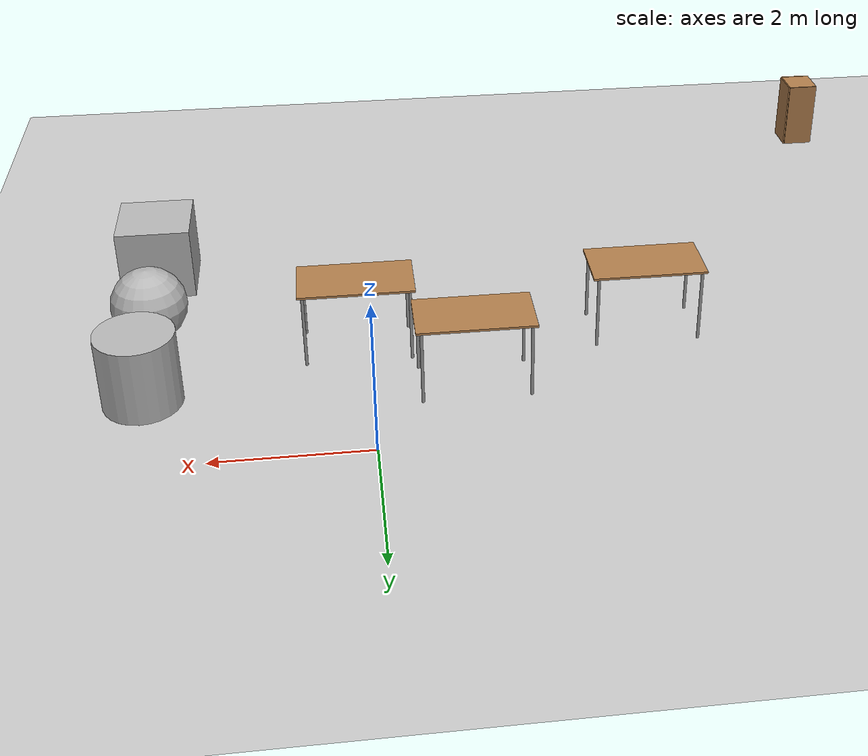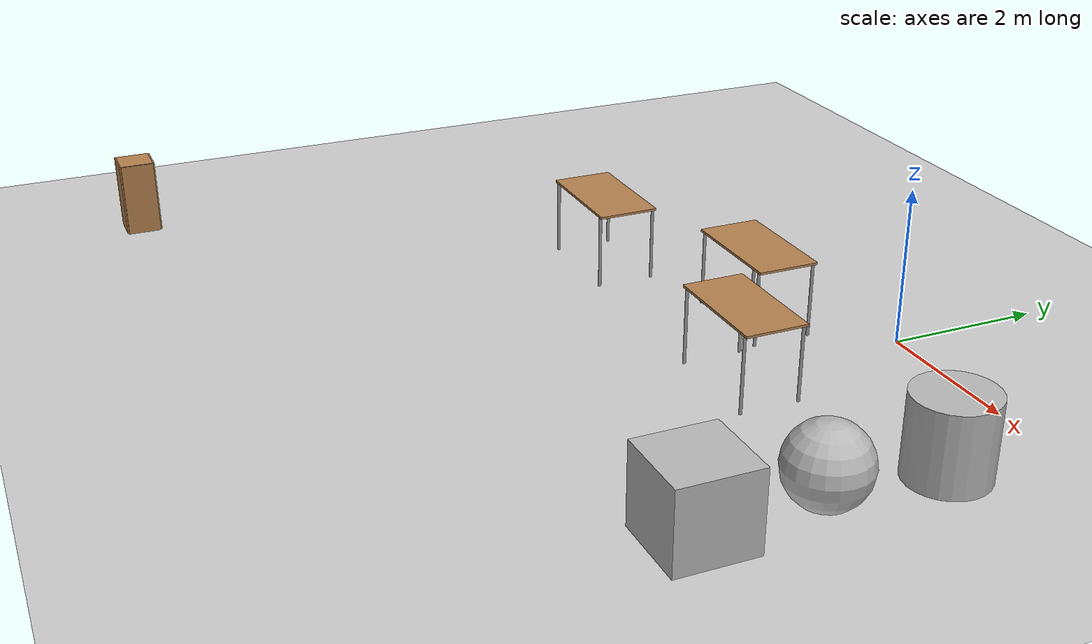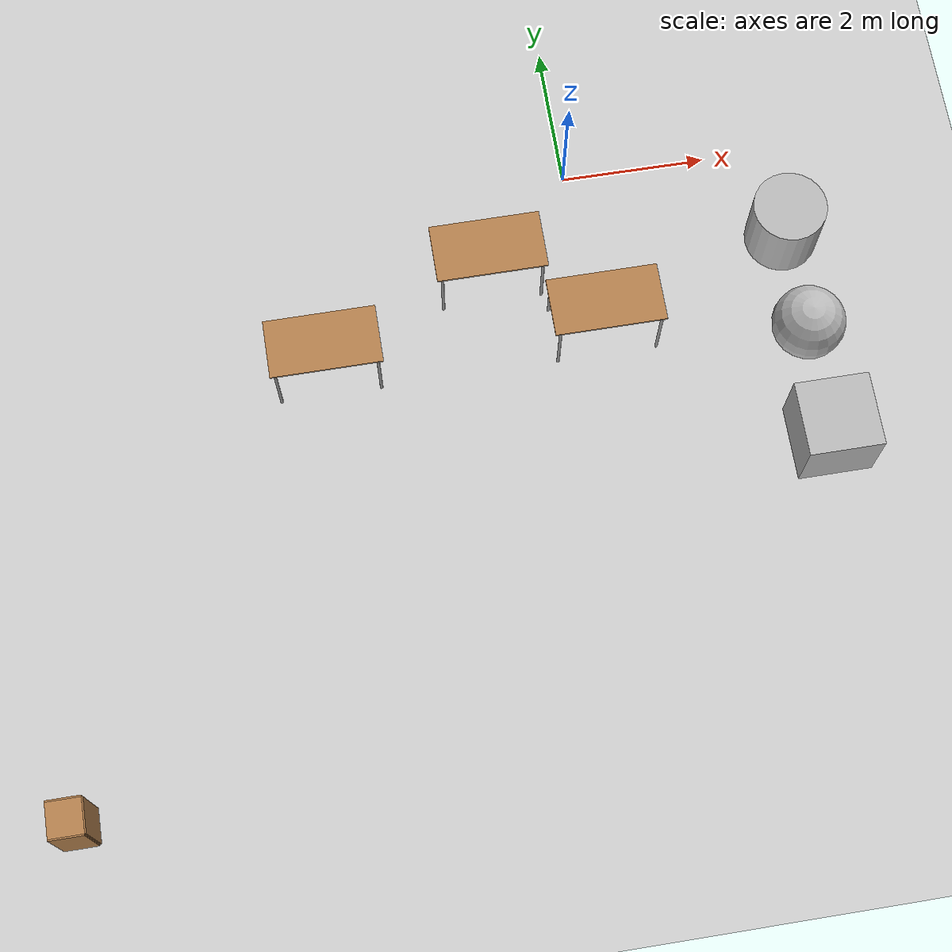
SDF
<sdf version="1.6">
 <world name="default">
  <model name="ground_plane">
   <static>1</static>
   <link name="link">
    <collision name="collision">
     <geometry><plane><normal>0 0 1</normal><size>100 100</size></plane></geometry>
     <surface>
      <contact><collide_bitmask>65535</collide_bitmask></contact>
      <friction><ode><mu>100</mu><mu2>50</mu2></ode></friction>
     </surface>
    </collision>
    <visual name="visual">
     <cast_shadows>0</cast_shadows>
     <geometry><plane><normal>0 0 1</normal><size>100 100</size></plane></geometry>
     <material>
      <script><uri>file://media/materials/scripts/gazebo.material</uri><name>Gazebo/Grey</name></script>
     </material>
    </visual>
   </link>
  </model>
  <model name="textured_shapes">
   <pose>2.8341 -2.85463 0.5 0 0 -2e-06</pose>
   <link name="box">
    <pose>0 -1.5 0 0 -0 0</pose>
    <collision name="collision"><geometry><box><size>1 1 1</size></box></geometry></collision>
    <visual name="visual">
     <geometry><box><size>1 1 1</size></box></geometry>
     <material>
      <script>
       <uri>model://textured_shapes/materials/scripts</uri>
       <uri>model://textured_shapes/materials/textures</uri>
       <name>TexturedShape/Squares</name>
      </script>
     </material>
    </visual>
    <inertial>
     <inertia><ixx>1</ixx><ixy>0</ixy><ixz>0</ixz><iyy>1</iyy><iyz>0</iyz><izz>1</izz></inertia>
     <mass>1</mass>
    </inertial>
   </link>
   <link name="sphere">
    <collision name="collision"><geometry><sphere><radius>0.5</radius></sphere></geometry></collision>
    <visual name="visual">
     <geometry><sphere><radius>0.5</radius></sphere></geometry>
     <material>
      <script>
       <uri>model://textured_shapes/materials/scripts</uri>
       <uri>model://textured_shapes/materials/textures</uri>
       <name>TexturedShape/Squares</name>
      </script>
     </material>
    </visual>
    <inertial>
     <inertia><ixx>1</ixx><ixy>0</ixy><ixz>0</ixz><iyy>1</iyy><iyz>0</iyz><izz>1</izz></inertia>
     <mass>1</mass>
    </inertial>
   </link>
   <link name="cylinder">
    <pose>0 1.5 0 0 -0 0</pose>
    <collision name="collision">
     <geometry><cylinder><radius>0.5</radius><length>1</length></cylinder></geometry>
    </collision>
    <visual name="visual">
     <geometry><cylinder><radius>0.5</radius><length>1</length></cylinder></geometry>
     <material>
      <script>
       <uri>model://textured_shapes/materials/scripts</uri>
       <uri>model://textured_shapes/materials/textures</uri>
       <name>TexturedShape/Squares</name>
      </script>
     </material>
    </visual>
    <inertial>
     <inertia><ixx>1</ixx><ixy>0</ixy><ixz>0</ixz><iyy>1</iyy><iyz>0</iyz><izz>1</izz></inertia>
     <mass>1</mass>
    </inertial>
   </link>
  </model>
  <model name="table_3">
   <static>1</static>
   <link name="link">
    <collision name="surface">
     <pose>0 0 1 0 -0 0</pose>
     <geometry><box><size>1.5 0.8 0.03</size></box></geometry>
     <surface><friction><ode><mu>0.6</mu><mu2>0.6</mu2></ode></friction></surface>
    </collision>
    <visual name="visual1">
     <pose>0 0 1 0 -0 0</pose>
     <geometry><box><size>1.5 0.8 0.03</size></box></geometry>
     <material>
      <script><uri>file://media/materials/scripts/gazebo.material</uri><name>Gazebo/Wood</name></script>
     </material>
    </visual>
    <collision name="front_left_leg">
     <pose>0.68 0.38 0.5 0 -0 0</pose>
     <geometry><cylinder><radius>0.02</radius><length>1</length></cylinder></geometry>
    </collision>
    <visual name="front_left_leg">
     <pose>0.68 0.38 0.5 0 -0 0</pose>
     <geometry><cylinder><radius>0.02</radius><length>1</length></cylinder></geometry>
     <material>
      <script><uri>file://media/materials/scripts/gazebo.material</uri><name>Gazebo/Grey</name></script>
     </material>
    </visual>
    <collision name="front_right_leg">
     <pose>0.68 -0.38 0.5 0 -0 0</pose>
     <geometry><cylinder><radius>0.02</radius><length>1</length></cylinder></geometry>
    </collision>
    <visual name="front_right_leg">
     <pose>0.68 -0.38 0.5 0 -0 0</pose>
     <geometry><cylinder><radius>0.02</radius><length>1</length></cylinder></geometry>
     <material>
      <script><uri>file://media/materials/scripts/gazebo.material</uri><name>Gazebo/Grey</name></script>
     </material>
    </visual>
    <collision name="back_right_leg">
     <pose>-0.68 -0.38 0.5 0 -0 0</pose>
     <geometry><cylinder><radius>0.02</radius><length>1</length></cylinder></geometry>
    </collision>
    <visual name="back_right_leg">
     <pose>-0.68 -0.38 0.5 0 -0 0</pose>
     <geometry><cylinder><radius>0.02</radius><length>1</length></cylinder></geometry>
     <material>
      <script><uri>file://media/materials/scripts/gazebo.material</uri><name>Gazebo/Grey</name></script>
     </material>
    </visual>
    <collision name="back_left_leg">
     <pose>-0.68 0.38 0.5 0 -0 0</pose>
     <geometry><cylinder><radius>0.02</radius><length>1</length></cylinder></geometry>
    </collision>
    <visual name="back_left_leg">
     <pose>-0.68 0.38 0.5 0 -0 0</pose>
     <geometry><cylinder><radius>0.02</radius><length>1</length></cylinder></geometry>
     <material>
      <script><uri>file://media/materials/scripts/gazebo.material</uri><name>Gazebo/Grey</name></script>
     </material>
    </visual>
   </link>
   <pose>0.137265 -2.30227 0 0 -0 0</pose>
  </model>
  <model name="table_4">
   <static>1</static>
   <link name="link">
    <collision name="surface">
     <pose>0 0 1 0 -0 0</pose>
     <geometry><box><size>1.5 0.8 0.03</size></box></geometry>
     <surface><friction><ode><mu>0.6</mu><mu2>0.6</mu2></ode></friction></surface>
    </collision>
    <visual name="visual1">
     <pose>0 0 1 0 -0 0</pose>
     <geometry><box><size>1.5 0.8 0.03</size></box></geometry>
     <material>
      <script><uri>file://media/materials/scripts/gazebo.material</uri><name>Gazebo/Wood</name></script>
     </material>
    </visual>
    <collision name="front_left_leg">
     <pose>0.68 0.38 0.5 0 -0 0</pose>
     <geometry><cylinder><radius>0.02</radius><length>1</length></cylinder></geometry>
    </collision>
    <visual name="front_left_leg">
     <pose>0.68 0.38 0.5 0 -0 0</pose>
     <geometry><cylinder><radius>0.02</radius><length>1</length></cylinder></geometry>
     <material>
      <script><uri>file://media/materials/scripts/gazebo.material</uri><name>Gazebo/Grey</name></script>
     </material>
    </visual>
    <collision name="front_right_leg">
     <pose>0.68 -0.38 0.5 0 -0 0</pose>
     <geometry><cylinder><radius>0.02</radius><length>1</length></cylinder></geometry>
    </collision>
    <visual name="front_right_leg">
     <pose>0.68 -0.38 0.5 0 -0 0</pose>
     <geometry><cylinder><radius>0.02</radius><length>1</length></cylinder></geometry>
     <material>
      <script><uri>file://media/materials/scripts/gazebo.material</uri><name>Gazebo/Grey</name></script>
     </material>
    </visual>
    <collision name="back_right_leg">
     <pose>-0.68 -0.38 0.5 0 -0 0</pose>
     <geometry><cylinder><radius>0.02</radius><length>1</length></cylinder></geometry>
    </collision>
    <visual name="back_right_leg">
     <pose>-0.68 -0.38 0.5 0 -0 0</pose>
     <geometry><cylinder><radius>0.02</radius><length>1</length></cylinder></geometry>
     <material>
      <script><uri>file://media/materials/scripts/gazebo.material</uri><name>Gazebo/Grey</name></script>
     </material>
    </visual>
    <collision name="back_left_leg">
     <pose>-0.68 0.38 0.5 0 -0 0</pose>
     <geometry><cylinder><radius>0.02</radius><length>1</length></cylinder></geometry>
    </collision>
    <visual name="back_left_leg">
     <pose>-0.68 0.38 0.5 0 -0 0</pose>
     <geometry><cylinder><radius>0.02</radius><length>1</length></cylinder></geometry>
     <material>
      <script><uri>file://media/materials/scripts/gazebo.material</uri><name>Gazebo/Grey</name></script>
     </material>
    </visual>
   </link>
   <pose>-3.65125 -2.29978 0 0 -0 0</pose>
  </model>
  <model name="cabinet">
   <static>1</static>
   <link name="cabinet_bottom_plate">
    <inertial>
     <pose>0 0 -1 0 -0 0</pose>
     <inertia><ixx>2.05</ixx><ixy>0</ixy><ixz>0</ixz><iyy>2.05</iyy><iyz>0</iyz><izz>2.05</izz></inertia>
     <mass>25</mass>
    </inertial>
    <collision name="cabinet_bottom_plate_geom">
     <pose>0 0 0.01 0 -0 0</pose>
     <geometry><box><size>0.45 0.45 0.02</size></box></geometry>
    </collision>
    <visual name="cabinet_bottom_plate_geom_visual">
     <pose>0 0 0.01 0 -0 0</pose>
     <geometry><box><size>0.45 0.45 0.02</size></box></geometry>
     <material>
      <script><uri>file://media/materials/scripts/gazebo.material</uri><name>Gazebo/Wood</name></script>
     </material>
    </visual>
    <collision name="cabinet_bottom_plate_geom_cabinet_back_plate">
     <pose>0.235 0 0.51 0 -0 0</pose>
     <geometry><box><size>0.02 0.45 1.02</size></box></geometry>
    </collision>
    <visual name="cabinet_bottom_plate_geom_cabinet_back_plate_visual">
     <pose>0.235 0 0.51 0 -0 0</pose>
     <geometry><box><size>0.02 0.45 1.02</size></box></geometry>
     <material>
      <script><uri>file://media/materials/scripts/gazebo.material</uri><name>Gazebo/Wood</name></script>
     </material>
    </visual>
    <collision name="cabinet_bottom_plate_geom_cabinet_left_plate">
     <pose>0 0.235 0.51 0 -0 0</pose>
     <geometry><box><size>0.45 0.02 1.02</size></box></geometry>
    </collision>
    <visual name="cabinet_bottom_plate_geom_cabinet_left_plate_visual">
     <pose>0 0.235 0.51 0 -0 0</pose>
     <geometry><box><size>0.45 0.02 1.02</size></box></geometry>
     <material>
      <script><uri>file://media/materials/scripts/gazebo.material</uri><name>Gazebo/Wood</name></script>
     </material>
    </visual>
    <collision name="cabinet_bottom_plate_geom_cabinet_middle_plate">
     <pose>0 0 0.51 0 -0 0</pose>
     <geometry><box><size>0.45 0.45 0.02</size></box></geometry>
    </collision>
    <visual name="cabinet_bottom_plate_geom_cabinet_middle_plate_visual">
     <pose>0 0 0.51 0 -0 0</pose>
     <geometry><box><size>0.45 0.45 0.02</size></box></geometry>
     <material>
      <script><uri>file://media/materials/scripts/gazebo.material</uri><name>Gazebo/Wood</name></script>
     </material>
    </visual>
    <collision name="cabinet_bottom_plate_geom_cabinet_right_plate">
     <pose>0 -0.235 0.51 0 -0 0</pose>
     <geometry><box><size>0.45 0.02 1.02</size></box></geometry>
    </collision>
    <visual name="cabinet_bottom_plate_geom_cabinet_right_plate_visual">
     <pose>0 -0.235 0.51 0 -0 0</pose>
     <geometry><box><size>0.45 0.02 1.02</size></box></geometry>
     <material>
      <script><uri>file://media/materials/scripts/gazebo.material</uri><name>Gazebo/Wood</name></script>
     </material>
    </visual>
    <collision name="cabinet_bottom_plate_geom_cabinet_top_plate">
     <pose>0 0 1.01 0 -0 0</pose>
     <geometry><box><size>0.45 0.45 0.02</size></box></geometry>
    </collision>
    <visual name="cabinet_bottom_plate_geom_cabinet_top_plate_visual">
     <pose>0 0 1.01 0 -0 0</pose>
     <geometry><box><size>0.45 0.45 0.02</size></box></geometry>
     <material>
      <script><uri>file://media/materials/scripts/gazebo.material</uri><name>Gazebo/Wood</name></script>
     </material>
    </visual>
   </link>
   <pose>-7.53923 -7.93337 0 0 -0 0</pose>
  </model>
  <model name="table_3_clone">
   <static>1</static>
   <link name="link">
    <collision name="surface">
     <pose>0 0 1 0 -0 0</pose>
     <geometry><box><size>1.5 0.8 0.03</size></box></geometry>
     <surface><friction><ode><mu>0.6</mu><mu2>0.6</mu2></ode></friction></surface>
    </collision>
    <visual name="visual1">
     <pose>0 0 1 0 -0 0</pose>
     <geometry><box><size>1.5 0.8 0.03</size></box></geometry>
     <material>
      <script><uri>file://media/materials/scripts/gazebo.material</uri><name>Gazebo/Wood</name></script>
     </material>
    </visual>
    <collision name="front_left_leg">
     <pose>0.68 0.38 0.5 0 -0 0</pose>
     <geometry><cylinder><radius>0.02</radius><length>1</length></cylinder></geometry>
    </collision>
    <visual name="front_left_leg">
     <pose>0.68 0.38 0.5 0 -0 0</pose>
     <geometry><cylinder><radius>0.02</radius><length>1</length></cylinder></geometry>
     <material>
      <script><uri>file://media/materials/scripts/gazebo.material</uri><name>Gazebo/Grey</name></script>
     </material>
    </visual>
    <collision name="front_right_leg">
     <pose>0.68 -0.38 0.5 0 -0 0</pose>
     <geometry><cylinder><radius>0.02</radius><length>1</length></cylinder></geometry>
    </collision>
    <visual name="front_right_leg">
     <pose>0.68 -0.38 0.5 0 -0 0</pose>
     <geometry><cylinder><radius>0.02</radius><length>1</length></cylinder></geometry>
     <material>
      <script><uri>file://media/materials/scripts/gazebo.material</uri><name>Gazebo/Grey</name></script>
     </material>
    </visual>
    <collision name="back_right_leg">
     <pose>-0.68 -0.38 0.5 0 -0 0</pose>
     <geometry><cylinder><radius>0.02</radius><length>1</length></cylinder></geometry>
    </collision>
    <visual name="back_right_leg">
     <pose>-0.68 -0.38 0.5 0 -0 0</pose>
     <geometry><cylinder><radius>0.02</radius><length>1</length></cylinder></geometry>
     <material>
      <script><uri>file://media/materials/scripts/gazebo.material</uri><name>Gazebo/Grey</name></script>
     </material>
    </visual>
    <collision name="back_left_leg">
     <pose>-0.68 0.38 0.5 0 -0 0</pose>
     <geometry><cylinder><radius>0.02</radius><length>1</length></cylinder></geometry>
    </collision>
    <visual name="back_left_leg">
     <pose>-0.68 0.38 0.5 0 -0 0</pose>
     <geometry><cylinder><radius>0.02</radius><length>1</length></cylinder></geometry>
     <material>
      <script><uri>file://media/materials/scripts/gazebo.material</uri><name>Gazebo/Grey</name></script>
     </material>
    </visual>
   </link>
   <pose>-1.28396 -1.29422 0 0 -0 0</pose>
  </model>
 </world>
</sdf>
